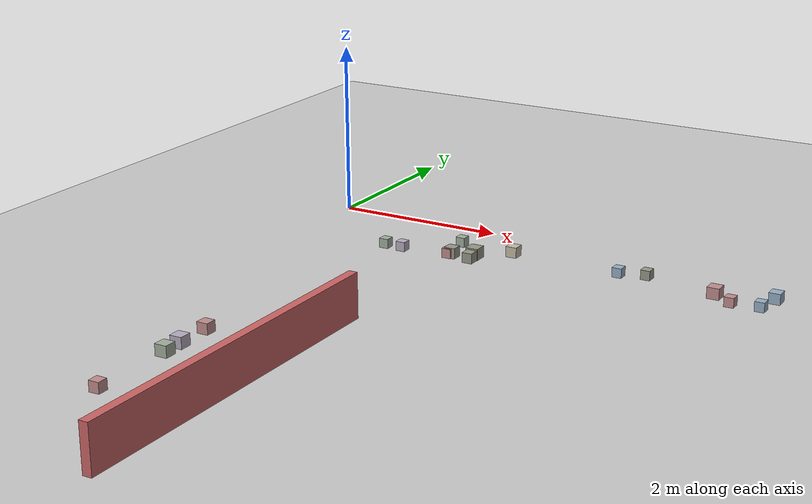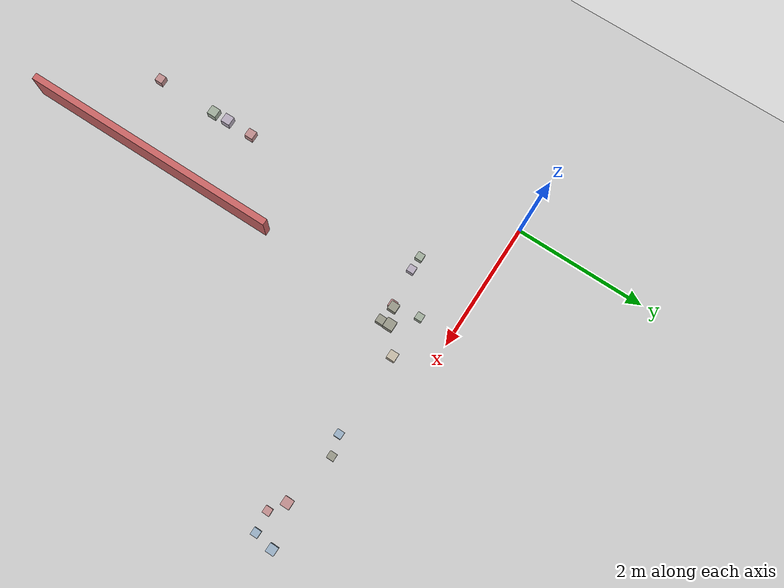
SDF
<sdf version="1.6">
 <world name="small_maze_world">
  <include><uri>model://ground_plane</uri></include>
  <include><uri>model://sun</uri></include>
  <model name="maze_wall_2">
   <static>true</static>
   <pose>2 -5 0.25 0 0 1.5708</pose>
   <link name="link">
    <collision name="collision"><geometry><box><size>4 0.1 0.5</size></box></geometry></collision>
    <visual name="visual">
     <geometry><box><size>4 0.1 0.5</size></box></geometry>
     <material><ambient>0.8 0.4 0.4 1</ambient></material>
    </visual>
   </link>
  </model>
  <model name="box_49">
   <static>false</static>
   <pose>0.92 -4.44 0.05 0 0 0</pose>
   <link name="link">
    <inertial>
     <mass>0.2</mass>
     <inertia><ixx>0.001</ixx><iyy>0.001</iyy><izz>0.001</izz><ixy>0</ixy><ixz>0</ixz><iyz>0</iyz></inertia>
    </inertial>
    <collision name="collision"><geometry><box><size>0.14 0.14 0.14</size></box></geometry></collision>
    <visual name="visual">
     <geometry><box><size>0.14 0.14 0.14</size></box></geometry>
     <material><ambient>0.72 0.68 0.75 1</ambient><diffuse>0.72 0.68 0.75 1</diffuse></material>
    </visual>
   </link>
  </model>
  <model name="box_51">
   <static>false</static>
   <pose>1.95 -0.9 0.05 0 0 0</pose>
   <link name="link">
    <inertial>
     <mass>0.2</mass>
     <inertia><ixx>0.001</ixx><iyy>0.001</iyy><izz>0.001</izz><ixy>0</ixy><ixz>0</ixz><iyz>0</iyz></inertia>
    </inertial>
    <collision name="collision"><geometry><box><size>0.13 0.13 0.13</size></box></geometry></collision>
    <visual name="visual">
     <geometry><box><size>0.13 0.13 0.13</size></box></geometry>
     <material><ambient>0.6 0.6 0.54 1</ambient><diffuse>0.6 0.6 0.54 1</diffuse></material>
    </visual>
   </link>
  </model>
  <model name="box_86">
   <static>false</static>
   <pose>2.19 -0.81 0.05 0 0 0</pose>
   <link name="link">
    <inertial>
     <mass>0.2</mass>
     <inertia><ixx>0.001</ixx><iyy>0.001</iyy><izz>0.001</izz><ixy>0</ixy><ixz>0</ixz><iyz>0</iyz></inertia>
    </inertial>
    <collision name="collision"><geometry><box><size>0.15 0.15 0.15</size></box></geometry></collision>
    <visual name="visual">
     <geometry><box><size>0.15 0.15 0.15</size></box></geometry>
     <material><ambient>0.6 0.6 0.54 1</ambient><diffuse>0.6 0.6 0.54 1</diffuse></material>
    </visual>
   </link>
  </model>
  <model name="box_126">
   <static>false</static>
   <pose>2.2 -0.95 0.05 0 0 0</pose>
   <link name="link">
    <inertial>
     <mass>0.2</mass>
     <inertia><ixx>0.001</ixx><iyy>0.001</iyy><izz>0.001</izz><ixy>0</ixy><ixz>0</ixz><iyz>0</iyz></inertia>
    </inertial>
    <collision name="collision"><geometry><box><size>0.12 0.12 0.12</size></box></geometry></collision>
    <visual name="visual">
     <geometry><box><size>0.12 0.12 0.12</size></box></geometry>
     <material><ambient>0.6 0.6 0.54 1</ambient><diffuse>0.6 0.6 0.54 1</diffuse></material>
    </visual>
   </link>
  </model>
  <model name="box_136">
   <static>false</static>
   <pose>4.14 -0.49 0.05 0 0 0</pose>
   <link name="link">
    <inertial>
     <mass>0.2</mass>
     <inertia><ixx>0.001</ixx><iyy>0.001</iyy><izz>0.001</izz><ixy>0</ixy><ixz>0</ixz><iyz>0</iyz></inertia>
    </inertial>
    <collision name="collision"><geometry><box><size>0.11 0.11 0.11</size></box></geometry></collision>
    <visual name="visual">
     <geometry><box><size>0.11 0.11 0.11</size></box></geometry>
     <material><ambient>0.6 0.6 0.54 1</ambient><diffuse>0.6 0.6 0.54 1</diffuse></material>
    </visual>
   </link>
  </model>
  <model name="box_198">
   <static>false</static>
   <pose>0.93 -5.64 0.05 0 0 0</pose>
   <link name="link">
    <inertial>
     <mass>0.2</mass>
     <inertia><ixx>0.001</ixx><iyy>0.001</iyy><izz>0.001</izz><ixy>0</ixy><ixz>0</ixz><iyz>0</iyz></inertia>
    </inertial>
    <collision name="collision"><geometry><box><size>0.12 0.12 0.12</size></box></geometry></collision>
    <visual name="visual">
     <geometry><box><size>0.12 0.12 0.12</size></box></geometry>
     <material><ambient>0.76 0.56 0.56 1</ambient><diffuse>0.76 0.56 0.56 1</diffuse></material>
    </visual>
   </link>
  </model>
  <model name="box_208">
   <static>false</static>
   <pose>1.87 -0.52 0.05 0 0 0</pose>
   <link name="link">
    <inertial>
     <mass>0.2</mass>
     <inertia><ixx>0.001</ixx><iyy>0.001</iyy><izz>0.001</izz><ixy>0</ixy><ixz>0</ixz><iyz>0</iyz></inertia>
    </inertial>
    <collision name="collision"><geometry><box><size>0.11 0.11 0.11</size></box></geometry></collision>
    <visual name="visual">
     <geometry><box><size>0.11 0.11 0.11</size></box></geometry>
     <material><ambient>0.64 0.69 0.62 1</ambient><diffuse>0.64 0.69 0.62 1</diffuse></material>
    </visual>
   </link>
  </model>
  <model name="box_212">
   <static>false</static>
   <pose>5.21 -0.81 0.05 0 0 0</pose>
   <link name="link">
    <inertial>
     <mass>0.2</mass>
     <inertia><ixx>0.001</ixx><iyy>0.001</iyy><izz>0.001</izz><ixy>0</ixy><ixz>0</ixz><iyz>0</iyz></inertia>
    </inertial>
    <collision name="collision"><geometry><box><size>0.11 0.11 0.11</size></box></geometry></collision>
    <visual name="visual">
     <geometry><box><size>0.11 0.11 0.11</size></box></geometry>
     <material><ambient>0.76 0.56 0.56 1</ambient><diffuse>0.76 0.56 0.56 1</diffuse></material>
    </visual>
   </link>
  </model>
  <model name="box_303">
   <static>false</static>
   <pose>1.92 -0.93 0.05 0 0 0</pose>
   <link name="link">
    <inertial>
     <mass>0.2</mass>
     <inertia><ixx>0.001</ixx><iyy>0.001</iyy><izz>0.001</izz><ixy>0</ixy><ixz>0</ixz><iyz>0</iyz></inertia>
    </inertial>
    <collision name="collision"><geometry><box><size>0.11 0.11 0.11</size></box></geometry></collision>
    <visual name="visual">
     <geometry><box><size>0.11 0.11 0.11</size></box></geometry>
     <material><ambient>0.76 0.56 0.56 1</ambient><diffuse>0.76 0.56 0.56 1</diffuse></material>
    </visual>
   </link>
  </model>
  <model name="box_326">
   <static>false</static>
   <pose>2.54 -0.54 0.05 0 0 0</pose>
   <link name="link">
    <inertial>
     <mass>0.2</mass>
     <inertia><ixx>0.001</ixx><iyy>0.001</iyy><izz>0.001</izz><ixy>0</ixy><ixz>0</ixz><iyz>0</iyz></inertia>
    </inertial>
    <collision name="collision"><geometry><box><size>0.13 0.13 0.13</size></box></geometry></collision>
    <visual name="visual">
     <geometry><box><size>0.13 0.13 0.13</size></box></geometry>
     <material><ambient>0.78 0.74 0.66 1</ambient><diffuse>0.78 0.74 0.66 1</diffuse></material>
    </visual>
   </link>
  </model>
  <model name="box_328">
   <static>false</static>
   <pose>5.53 -0.78 0.05 0 0 0</pose>
   <link name="link">
    <inertial>
     <mass>0.2</mass>
     <inertia><ixx>0.001</ixx><iyy>0.001</iyy><izz>0.001</izz><ixy>0</ixy><ixz>0</ixz><iyz>0</iyz></inertia>
    </inertial>
    <collision name="collision"><geometry><box><size>0.11 0.11 0.11</size></box></geometry></collision>
    <visual name="visual">
     <geometry><box><size>0.11 0.11 0.11</size></box></geometry>
     <material><ambient>0.6 0.69 0.77 1</ambient><diffuse>0.6 0.69 0.77 1</diffuse></material>
    </visual>
   </link>
  </model>
  <model name="box_340">
   <static>false</static>
   <pose>4.98 -0.65 0.05 0 0 0</pose>
   <link name="link">
    <inertial>
     <mass>0.2</mass>
     <inertia><ixx>0.001</ixx><iyy>0.001</iyy><izz>0.001</izz><ixy>0</ixy><ixz>0</ixz><iyz>0</iyz></inertia>
    </inertial>
    <collision name="collision"><geometry><box><size>0.14 0.14 0.14</size></box></geometry></collision>
    <visual name="visual">
     <geometry><box><size>0.14 0.14 0.14</size></box></geometry>
     <material><ambient>0.76 0.56 0.56 1</ambient><diffuse>0.76 0.56 0.56 1</diffuse></material>
    </visual>
   </link>
  </model>
  <model name="box_344">
   <static>false</static>
   <pose>0.93 -4.68 0.05 0 0 0</pose>
   <link name="link">
    <inertial>
     <mass>0.2</mass>
     <inertia><ixx>0.001</ixx><iyy>0.001</iyy><izz>0.001</izz><ixy>0</ixy><ixz>0</ixz><iyz>0</iyz></inertia>
    </inertial>
    <collision name="collision"><geometry><box><size>0.14 0.14 0.14</size></box></geometry></collision>
    <visual name="visual">
     <geometry><box><size>0.14 0.14 0.14</size></box></geometry>
     <material><ambient>0.64 0.69 0.62 1</ambient><diffuse>0.64 0.69 0.62 1</diffuse></material>
    </visual>
   </link>
  </model>
  <model name="box_365">
   <static>false</static>
   <pose>1.35 -0.98 0.05 0 0 0</pose>
   <link name="link">
    <inertial>
     <mass>0.2</mass>
     <inertia><ixx>0.001</ixx><iyy>0.001</iyy><izz>0.001</izz><ixy>0</ixy><ixz>0</ixz><iyz>0</iyz></inertia>
    </inertial>
    <collision name="collision"><geometry><box><size>0.11 0.11 0.11</size></box></geometry></collision>
    <visual name="visual">
     <geometry><box><size>0.11 0.11 0.11</size></box></geometry>
     <material><ambient>0.72 0.68 0.75 1</ambient><diffuse>0.72 0.68 0.75 1</diffuse></material>
    </visual>
   </link>
  </model>
  <model name="box_377">
   <static>false</static>
   <pose>1.13 -0.98 0.05 0 0 0</pose>
   <link name="link">
    <inertial>
     <mass>0.2</mass>
     <inertia><ixx>0.001</ixx><iyy>0.001</iyy><izz>0.001</izz><ixy>0</ixy><ixz>0</ixz><iyz>0</iyz></inertia>
    </inertial>
    <collision name="collision"><geometry><box><size>0.11 0.11 0.11</size></box></geometry></collision>
    <visual name="visual">
     <geometry><box><size>0.11 0.11 0.11</size></box></geometry>
     <material><ambient>0.64 0.69 0.62 1</ambient><diffuse>0.64 0.69 0.62 1</diffuse></material>
    </visual>
   </link>
  </model>
  <model name="box_390">
   <static>false</static>
   <pose>0.92 -4.03 0.05 0 0 0</pose>
   <link name="link">
    <inertial>
     <mass>0.2</mass>
     <inertia><ixx>0.001</ixx><iyy>0.001</iyy><izz>0.001</izz><ixy>0</ixy><ixz>0</ixz><iyz>0</iyz></inertia>
    </inertial>
    <collision name="collision"><geometry><box><size>0.13 0.13 0.13</size></box></geometry></collision>
    <visual name="visual">
     <geometry><box><size>0.13 0.13 0.13</size></box></geometry>
     <material><ambient>0.76 0.56 0.56 1</ambient><diffuse>0.76 0.56 0.56 1</diffuse></material>
    </visual>
   </link>
  </model>
  <model name="box_413">
   <static>false</static>
   <pose>3.84 -0.57 0.05 0 0 0</pose>
   <link name="link">
    <inertial>
     <mass>0.2</mass>
     <inertia><ixx>0.001</ixx><iyy>0.001</iyy><izz>0.001</izz><ixy>0</ixy><ixz>0</ixz><iyz>0</iyz></inertia>
    </inertial>
    <collision name="collision"><geometry><box><size>0.11 0.11 0.11</size></box></geometry></collision>
    <visual name="visual">
     <geometry><box><size>0.11 0.11 0.11</size></box></geometry>
     <material><ambient>0.6 0.69 0.77 1</ambient><diffuse>0.6 0.69 0.77 1</diffuse></material>
    </visual>
   </link>
  </model>
  <model name="box_417">
   <static>false</static>
   <pose>5.59 -0.48 0.05 0 0 0</pose>
   <link name="link">
    <inertial>
     <mass>0.2</mass>
     <inertia><ixx>0.001</ixx><iyy>0.001</iyy><izz>0.001</izz><ixy>0</ixy><ixz>0</ixz><iyz>0</iyz></inertia>
    </inertial>
    <collision name="collision"><geometry><box><size>0.13 0.13 0.13</size></box></geometry></collision>
    <visual name="visual">
     <geometry><box><size>0.13 0.13 0.13</size></box></geometry>
     <material><ambient>0.6 0.69 0.77 1</ambient><diffuse>0.6 0.69 0.77 1</diffuse></material>
    </visual>
   </link>
  </model>
 </world>
</sdf>
